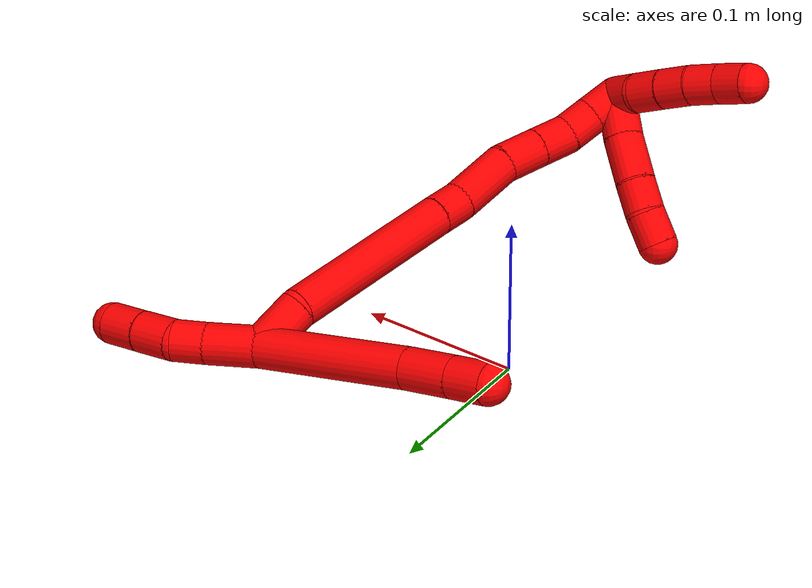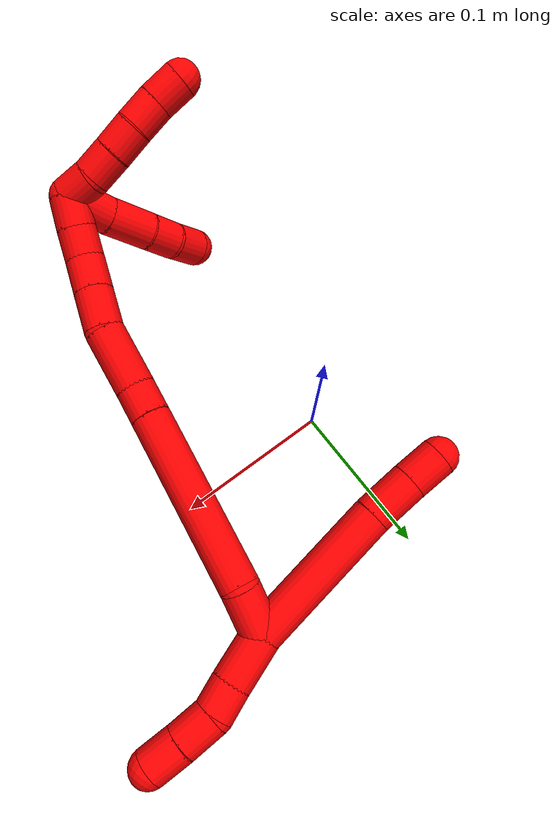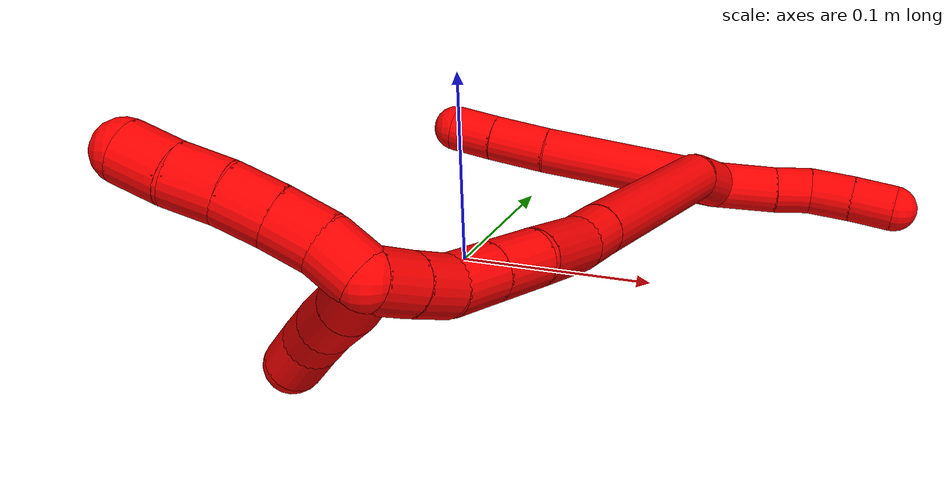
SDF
<sdf version="1.7">
 <world name="default">
  <model name="2">
   <static>0</static>
   <link name="2">
    <collision name="collision-cylinder-e_1_2_8">
     <pose>0.001353 -0.008454 0.04741 0.176458 0.028086 0.002485</pose>
     <geometry><cylinder><radius>0.0125</radius><length>0.096354</length></cylinder></geometry>
     <surface>
      <friction><ode><mu>1.16</mu><mu2>1.16</mu2><slip1>0</slip1><slip2>0</slip2></ode></friction>
      <contact><ode><kp>1e+06</kp><kd>1</kd><max_vel>0</max_vel><min_depth>0.001</min_depth></ode></contact>
     </surface>
    </collision>
    <visual name="visual-cylinder-e_1_2_8">
     <pose>0.001353 -0.008454 0.04741 0.176458 0.028086 0.002485</pose>
     <geometry><cylinder><radius>0.0125</radius><length>0.096354</length></cylinder></geometry>
     <material><ambient>1 0 0 1</ambient></material>
    </visual>
    <collision name="collision-cylinder-e_2_8_9">
     <pose>0.003751 -0.020593 0.109597 0.244407 0.068503 0.008417</pose>
     <geometry><cylinder><radius>0.0125</radius><length>0.03053</length></cylinder></geometry>
     <surface>
      <friction><ode><mu>1.16</mu><mu2>1.16</mu2><slip1>0</slip1><slip2>0</slip2></ode></friction>
      <contact><ode><kp>1e+06</kp><kd>1</kd><max_vel>0</max_vel><min_depth>0.001</min_depth></ode></contact>
     </surface>
    </collision>
    <visual name="visual-cylinder-e_2_8_9">
     <pose>0.003751 -0.020593 0.109597 0.244407 0.068503 0.008417</pose>
     <geometry><cylinder><radius>0.0125</radius><length>0.03053</length></cylinder></geometry>
     <material><ambient>1 0 0 1</ambient></material>
    </visual>
    <collision name="collision-cylinder-e_3_9_6">
     <pose>0.005691 -0.027453 0.13545 0.279168 0.077561 0.010903</pose>
     <geometry><cylinder><radius>0.0125</radius><length>0.023117</length></cylinder></geometry>
     <surface>
      <friction><ode><mu>1.16</mu><mu2>1.16</mu2><slip1>0</slip1><slip2>0</slip2></ode></friction>
      <contact><ode><kp>1e+06</kp><kd>1</kd><max_vel>0</max_vel><min_depth>0.001</min_depth></ode></contact>
     </surface>
    </collision>
    <visual name="visual-cylinder-e_3_9_6">
     <pose>0.005691 -0.027453 0.13545 0.279168 0.077561 0.010903</pose>
     <geometry><cylinder><radius>0.0125</radius><length>0.023117</length></cylinder></geometry>
     <material><ambient>1 0 0 1</ambient></material>
    </visual>
    <collision name="collision-cylinder-e_1_2_10">
     <pose>0.000848 -6e-05 -0.016372 3.13793 0.051778 3.00034</pose>
     <geometry><cylinder><radius>0.0125</radius><length>0.032788</length></cylinder></geometry>
     <surface>
      <friction><ode><mu>1.16</mu><mu2>1.16</mu2><slip1>0</slip1><slip2>0</slip2></ode></friction>
      <contact><ode><kp>1e+06</kp><kd>1</kd><max_vel>0</max_vel><min_depth>0.001</min_depth></ode></contact>
     </surface>
    </collision>
    <visual name="visual-cylinder-e_1_2_10">
     <pose>0.000848 -6e-05 -0.016372 3.13793 0.051778 3.00034</pose>
     <geometry><cylinder><radius>0.0125</radius><length>0.032788</length></cylinder></geometry>
     <material><ambient>1 0 0 1</ambient></material>
    </visual>
    <collision name="collision-cylinder-e_2_10_11">
     <pose>0.001972 -0.000819 -0.04287 3.07269 0.027089 0.748926</pose>
     <geometry><cylinder><radius>0.0125</radius><length>0.020308</length></cylinder></geometry>
     <surface>
      <friction><ode><mu>1.16</mu><mu2>1.16</mu2><slip1>0</slip1><slip2>0</slip2></ode></friction>
      <contact><ode><kp>1e+06</kp><kd>1</kd><max_vel>0</max_vel><min_depth>0.001</min_depth></ode></contact>
     </surface>
    </collision>
    <visual name="visual-cylinder-e_2_10_11">
     <pose>0.001972 -0.000819 -0.04287 3.07269 0.027089 0.748926</pose>
     <geometry><cylinder><radius>0.0125</radius><length>0.020308</length></cylinder></geometry>
     <material><ambient>1 0 0 1</ambient></material>
    </visual>
    <collision name="collision-cylinder-e_3_11_12">
     <pose>0.000696 0.001258 -0.064452 -2.90389 -0.130814 1.00341</pose>
     <geometry><cylinder><radius>0.0125</radius><length>0.023777</length></cylinder></geometry>
     <surface>
      <friction><ode><mu>1.16</mu><mu2>1.16</mu2><slip1>0</slip1><slip2>0</slip2></ode></friction>
      <contact><ode><kp>1e+06</kp><kd>1</kd><max_vel>0</max_vel><min_depth>0.001</min_depth></ode></contact>
     </surface>
    </collision>
    <visual name="visual-cylinder-e_3_11_12">
     <pose>0.000696 0.001258 -0.064452 -2.90389 -0.130814 1.00341</pose>
     <geometry><cylinder><radius>0.0125</radius><length>0.023777</length></cylinder></geometry>
     <material><ambient>1 0 0 1</ambient></material>
    </visual>
    <collision name="collision-cylinder-e_4_12_5">
     <pose>-0.002411 0.007277 -0.086897 -2.85456 -0.135047 0.875393</pose>
     <geometry><cylinder><radius>0.0125</radius><length>0.023127</length></cylinder></geometry>
     <surface>
      <friction><ode><mu>1.16</mu><mu2>1.16</mu2><slip1>0</slip1><slip2>0</slip2></ode></friction>
      <contact><ode><kp>1e+06</kp><kd>1</kd><max_vel>0</max_vel><min_depth>0.001</min_depth></ode></contact>
     </surface>
    </collision>
    <visual name="visual-cylinder-e_4_12_5">
     <pose>-0.002411 0.007277 -0.086897 -2.85456 -0.135047 0.875393</pose>
     <geometry><cylinder><radius>0.0125</radius><length>0.023127</length></cylinder></geometry>
     <material><ambient>1 0 0 1</ambient></material>
    </visual>
    <collision name="collision-cylinder-e_1_2_13">
     <pose>-0.01265 0.006272 0.007381 -0.704393 -0.917335 0.359048</pose>
     <geometry><cylinder><radius>0.0125</radius><length>0.031864</length></cylinder></geometry>
     <surface>
      <friction><ode><mu>1.16</mu><mu2>1.16</mu2><slip1>0</slip1><slip2>0</slip2></ode></friction>
      <contact><ode><kp>1e+06</kp><kd>1</kd><max_vel>0</max_vel><min_depth>0.001</min_depth></ode></contact>
     </surface>
    </collision>
    <visual name="visual-cylinder-e_1_2_13">
     <pose>-0.01265 0.006272 0.007381 -0.704393 -0.917335 0.359048</pose>
     <geometry><cylinder><radius>0.0125</radius><length>0.031864</length></cylinder></geometry>
     <material><ambient>1 0 0 1</ambient></material>
    </visual>
    <collision name="collision-cylinder-e_2_13_14">
     <pose>-0.060059 0.051049 0.04085 -0.975302 -0.641804 0.348997</pose>
     <geometry><cylinder><radius>0.0125</radius><length>0.116128</length></cylinder></geometry>
     <surface>
      <friction><ode><mu>1.16</mu><mu2>1.16</mu2><slip1>0</slip1><slip2>0</slip2></ode></friction>
      <contact><ode><kp>1e+06</kp><kd>1</kd><max_vel>0</max_vel><min_depth>0.001</min_depth></ode></contact>
     </surface>
    </collision>
    <visual name="visual-cylinder-e_2_13_14">
     <pose>-0.060059 0.051049 0.04085 -0.975302 -0.641804 0.348997</pose>
     <geometry><cylinder><radius>0.0125</radius><length>0.116128</length></cylinder></geometry>
     <material><ambient>1 0 0 1</ambient></material>
    </visual>
    <collision name="collision-cylinder-e_3_14_15">
     <pose>-0.100791 0.096665 0.071573 -0.993215 -0.613101 0.33975</pose>
     <geometry><cylinder><radius>0.0125</radius><length>0.020758</length></cylinder></geometry>
     <surface>
      <friction><ode><mu>1.16</mu><mu2>1.16</mu2><slip1>0</slip1><slip2>0</slip2></ode></friction>
      <contact><ode><kp>1e+06</kp><kd>1</kd><max_vel>0</max_vel><min_depth>0.001</min_depth></ode></contact>
     </surface>
    </collision>
    <visual name="visual-cylinder-e_3_14_15">
     <pose>-0.100791 0.096665 0.071573 -0.993215 -0.613101 0.33975</pose>
     <geometry><cylinder><radius>0.0125</radius><length>0.020758</length></cylinder></geometry>
     <material><ambient>1 0 0 1</ambient></material>
    </visual>
    <collision name="collision-cylinder-e_4_15_16">
     <pose>-0.120985 0.115666 0.085002 -0.933941 -0.765874 0.400724</pose>
     <geometry><cylinder><radius>0.0125</radius><length>0.041035</length></cylinder></geometry>
     <surface>
      <friction><ode><mu>1.16</mu><mu2>1.16</mu2><slip1>0</slip1><slip2>0</slip2></ode></friction>
      <contact><ode><kp>1e+06</kp><kd>1</kd><max_vel>0</max_vel><min_depth>0.001</min_depth></ode></contact>
     </surface>
    </collision>
    <visual name="visual-cylinder-e_4_15_16">
     <pose>-0.120985 0.115666 0.085002 -0.933941 -0.765874 0.400724</pose>
     <geometry><cylinder><radius>0.0125</radius><length>0.041035</length></cylinder></geometry>
     <material><ambient>1 0 0 1</ambient></material>
    </visual>
    <collision name="collision-cylinder-e_5_16_17">
     <pose>-0.142177 0.135195 0.101965 -0.751915 -0.55726 0.224891</pose>
     <geometry><cylinder><radius>0.0125</radius><length>0.026357</length></cylinder></geometry>
     <surface>
      <friction><ode><mu>1.16</mu><mu2>1.16</mu2><slip1>0</slip1><slip2>0</slip2></ode></friction>
      <contact><ode><kp>1e+06</kp><kd>1</kd><max_vel>0</max_vel><min_depth>0.001</min_depth></ode></contact>
     </surface>
    </collision>
    <visual name="visual-cylinder-e_5_16_17">
     <pose>-0.142177 0.135195 0.101965 -0.751915 -0.55726 0.224891</pose>
     <geometry><cylinder><radius>0.0125</radius><length>0.026357</length></cylinder></geometry>
     <material><ambient>1 0 0 1</ambient></material>
    </visual>
    <collision name="collision-cylinder-e_6_17_18">
     <pose>-0.155186 0.149533 0.117316 -0.750618 -0.55137 0.22199</pose>
     <geometry><cylinder><radius>0.0125</radius><length>0.023058</length></cylinder></geometry>
     <surface>
      <friction><ode><mu>1.16</mu><mu2>1.16</mu2><slip1>0</slip1><slip2>0</slip2></ode></friction>
      <contact><ode><kp>1e+06</kp><kd>1</kd><max_vel>0</max_vel><min_depth>0.001</min_depth></ode></contact>
     </surface>
    </collision>
    <visual name="visual-cylinder-e_6_17_18">
     <pose>-0.155186 0.149533 0.117316 -0.750618 -0.55137 0.22199</pose>
     <geometry><cylinder><radius>0.0125</radius><length>0.023058</length></cylinder></geometry>
     <material><ambient>1 0 0 1</ambient></material>
    </visual>
    <collision name="collision-cylinder-e_7_18_19">
     <pose>-0.168322 0.159909 0.130589 -0.54301 -0.784021 0.22916</pose>
     <geometry><cylinder><radius>0.0125</radius><length>0.020099</length></cylinder></geometry>
     <surface>
      <friction><ode><mu>1.16</mu><mu2>1.16</mu2><slip1>0</slip1><slip2>0</slip2></ode></friction>
      <contact><ode><kp>1e+06</kp><kd>1</kd><max_vel>0</max_vel><min_depth>0.001</min_depth></ode></contact>
     </surface>
    </collision>
    <visual name="visual-cylinder-e_7_18_19">
     <pose>-0.168322 0.159909 0.130589 -0.54301 -0.784021 0.22916</pose>
     <geometry><cylinder><radius>0.0125</radius><length>0.020099</length></cylinder></geometry>
     <material><ambient>1 0 0 1</ambient></material>
    </visual>
    <collision name="collision-cylinder-e_8_19_1">
     <pose>-0.182727 0.166922 0.143207 -0.472689 -0.784039 0.198485</pose>
     <geometry><cylinder><radius>0.0125</radius><length>0.020701</length></cylinder></geometry>
     <surface>
      <friction><ode><mu>1.16</mu><mu2>1.16</mu2><slip1>0</slip1><slip2>0</slip2></ode></friction>
      <contact><ode><kp>1e+06</kp><kd>1</kd><max_vel>0</max_vel><min_depth>0.001</min_depth></ode></contact>
     </surface>
    </collision>
    <visual name="visual-cylinder-e_8_19_1">
     <pose>-0.182727 0.166922 0.143207 -0.472689 -0.784039 0.198485</pose>
     <geometry><cylinder><radius>0.0125</radius><length>0.020701</length></cylinder></geometry>
     <material><ambient>1 0 0 1</ambient></material>
    </visual>
    <collision name="collision-cylinder-e_1_1_20">
     <pose>-0.190733 0.164266 0.157707 0.644403 -0.06981 -0.023313</pose>
     <geometry><cylinder><radius>0.0125</radius><length>0.02</length></cylinder></geometry>
     <surface>
      <friction><ode><mu>1.16</mu><mu2>1.16</mu2><slip1>0</slip1><slip2>0</slip2></ode></friction>
      <contact><ode><kp>1e+06</kp><kd>1</kd><max_vel>0</max_vel><min_depth>0.001</min_depth></ode></contact>
     </surface>
    </collision>
    <visual name="visual-cylinder-e_1_1_20">
     <pose>-0.190733 0.164266 0.157707 0.644403 -0.06981 -0.023313</pose>
     <geometry><cylinder><radius>0.0125</radius><length>0.02</length></cylinder></geometry>
     <material><ambient>1 0 0 1</ambient></material>
    </visual>
    <collision name="collision-cylinder-e_2_20_21">
     <pose>-0.192791 0.154259 0.17474 0.41725 -0.136424 -0.028925</pose>
     <geometry><cylinder><radius>0.0125</radius><length>0.02</length></cylinder></geometry>
     <surface>
      <friction><ode><mu>1.16</mu><mu2>1.16</mu2><slip1>0</slip1><slip2>0</slip2></ode></friction>
      <contact><ode><kp>1e+06</kp><kd>1</kd><max_vel>0</max_vel><min_depth>0.001</min_depth></ode></contact>
     </surface>
    </collision>
    <visual name="visual-cylinder-e_2_20_21">
     <pose>-0.192791 0.154259 0.17474 0.41725 -0.136424 -0.028925</pose>
     <geometry><cylinder><radius>0.0125</radius><length>0.02</length></cylinder></geometry>
     <material><ambient>1 0 0 1</ambient></material>
    </visual>
    <collision name="collision-cylinder-e_3_21_22">
     <pose>-0.195556 0.14675 0.19306 0.360674 -0.141025 -0.025753</pose>
     <geometry><cylinder><radius>0.0125</radius><length>0.02</length></cylinder></geometry>
     <surface>
      <friction><ode><mu>1.16</mu><mu2>1.16</mu2><slip1>0</slip1><slip2>0</slip2></ode></friction>
      <contact><ode><kp>1e+06</kp><kd>1</kd><max_vel>0</max_vel><min_depth>0.001</min_depth></ode></contact>
     </surface>
    </collision>
    <visual name="visual-cylinder-e_3_21_22">
     <pose>-0.195556 0.14675 0.19306 0.360674 -0.141025 -0.025753</pose>
     <geometry><cylinder><radius>0.0125</radius><length>0.02</length></cylinder></geometry>
     <material><ambient>1 0 0 1</ambient></material>
    </visual>
    <collision name="collision-cylinder-e_4_22_23">
     <pose>-0.197764 0.14053 0.211912 0.27697 -0.080235 -0.011189</pose>
     <geometry><cylinder><radius>0.0125</radius><length>0.02</length></cylinder></geometry>
     <surface>
      <friction><ode><mu>1.16</mu><mu2>1.16</mu2><slip1>0</slip1><slip2>0</slip2></ode></friction>
      <contact><ode><kp>1e+06</kp><kd>1</kd><max_vel>0</max_vel><min_depth>0.001</min_depth></ode></contact>
     </surface>
    </collision>
    <visual name="visual-cylinder-e_4_22_23">
     <pose>-0.197764 0.14053 0.211912 0.27697 -0.080235 -0.011189</pose>
     <geometry><cylinder><radius>0.0125</radius><length>0.02</length></cylinder></geometry>
     <material><ambient>1 0 0 1</ambient></material>
    </visual>
    <collision name="collision-cylinder-e_5_23_4">
     <pose>-0.19883 0.133894 0.2307 0.401966 -0.026492 -0.005398</pose>
     <geometry><cylinder><radius>0.0125</radius><length>0.02</length></cylinder></geometry>
     <surface>
      <friction><ode><mu>1.16</mu><mu2>1.16</mu2><slip1>0</slip1><slip2>0</slip2></ode></friction>
      <contact><ode><kp>1e+06</kp><kd>1</kd><max_vel>0</max_vel><min_depth>0.001</min_depth></ode></contact>
     </surface>
    </collision>
    <visual name="visual-cylinder-e_5_23_4">
     <pose>-0.19883 0.133894 0.2307 0.401966 -0.026492 -0.005398</pose>
     <geometry><cylinder><radius>0.0125</radius><length>0.02</length></cylinder></geometry>
     <material><ambient>1 0 0 1</ambient></material>
    </visual>
    <collision name="collision-cylinder-e_1_1_24">
     <pose>-0.176745 0.168603 0.154263 0.350345 1.22266 0.24684</pose>
     <geometry><cylinder><radius>0.0125</radius><length>0.028279</length></cylinder></geometry>
     <surface>
      <friction><ode><mu>1.16</mu><mu2>1.16</mu2><slip1>0</slip1><slip2>0</slip2></ode></friction>
      <contact><ode><kp>1e+06</kp><kd>1</kd><max_vel>0</max_vel><min_depth>0.001</min_depth></ode></contact>
     </surface>
    </collision>
    <visual name="visual-cylinder-e_1_1_24">
     <pose>-0.176745 0.168603 0.154263 0.350345 1.22266 0.24684</pose>
     <geometry><cylinder><radius>0.0125</radius><length>0.028279</length></cylinder></geometry>
     <material><ambient>1 0 0 1</ambient></material>
    </visual>
    <collision name="collision-cylinder-e_2_24_25">
     <pose>-0.149793 0.164743 0.164889 0.346987 1.12773 0.220744</pose>
     <geometry><cylinder><radius>0.0125</radius><length>0.030241</length></cylinder></geometry>
     <surface>
      <friction><ode><mu>1.16</mu><mu2>1.16</mu2><slip1>0</slip1><slip2>0</slip2></ode></friction>
      <contact><ode><kp>1e+06</kp><kd>1</kd><max_vel>0</max_vel><min_depth>0.001</min_depth></ode></contact>
     </surface>
    </collision>
    <visual name="visual-cylinder-e_2_24_25">
     <pose>-0.149793 0.164743 0.164889 0.346987 1.12773 0.220744</pose>
     <geometry><cylinder><radius>0.0125</radius><length>0.030241</length></cylinder></geometry>
     <material><ambient>1 0 0 1</ambient></material>
    </visual>
    <collision name="collision-cylinder-e_3_25_26">
     <pose>-0.126901 0.162111 0.175232 0.10047 1.1377 0.064268</pose>
     <geometry><cylinder><radius>0.0125</radius><length>0.020342</length></cylinder></geometry>
     <surface>
      <friction><ode><mu>1.16</mu><mu2>1.16</mu2><slip1>0</slip1><slip2>0</slip2></ode></friction>
      <contact><ode><kp>1e+06</kp><kd>1</kd><max_vel>0</max_vel><min_depth>0.001</min_depth></ode></contact>
     </surface>
    </collision>
    <visual name="visual-cylinder-e_3_25_26">
     <pose>-0.126901 0.162111 0.175232 0.10047 1.1377 0.064268</pose>
     <geometry><cylinder><radius>0.0125</radius><length>0.020342</length></cylinder></geometry>
     <material><ambient>1 0 0 1</ambient></material>
    </visual>
    <collision name="collision-cylinder-e_4_26_3">
     <pose>-0.108453 0.163156 0.184439 -0.28866 1.05923 -0.169756</pose>
     <geometry><cylinder><radius>0.0125</radius><length>0.021138</length></cylinder></geometry>
     <surface>
      <friction><ode><mu>1.16</mu><mu2>1.16</mu2><slip1>0</slip1><slip2>0</slip2></ode></friction>
      <contact><ode><kp>1e+06</kp><kd>1</kd><max_vel>0</max_vel><min_depth>0.001</min_depth></ode></contact>
     </surface>
    </collision>
    <visual name="visual-cylinder-e_4_26_3">
     <pose>-0.108453 0.163156 0.184439 -0.28866 1.05923 -0.169756</pose>
     <geometry><cylinder><radius>0.0125</radius><length>0.021138</length></cylinder></geometry>
     <material><ambient>1 0 0 1</ambient></material>
    </visual>
    <collision name="collision-sphere-3">
     <pose>-0.099236 0.164628 0.189399 0 -0 0</pose>
     <geometry><sphere><radius>0.0125</radius></sphere></geometry>
     <surface>
      <friction><ode><mu>1.16</mu><mu2>1.16</mu2><slip1>0</slip1><slip2>0</slip2></ode></friction>
      <contact><ode><kp>1e+06</kp><kd>1</kd><max_vel>0</max_vel><min_depth>0.001</min_depth></ode></contact>
     </surface>
    </collision>
    <visual name="visual-sphere-3">
     <pose>-0.099236 0.164628 0.189399 0 -0 0</pose>
     <geometry><sphere><radius>0.0125</radius></sphere></geometry>
     <material><ambient>1 0 0 1</ambient></material>
    </visual>
    <collision name="collision-sphere-26">
     <pose>-0.117669 0.161683 0.179479 0 -0 0</pose>
     <geometry><sphere><radius>0.0125</radius></sphere></geometry>
     <surface>
      <friction><ode><mu>1.16</mu><mu2>1.16</mu2><slip1>0</slip1><slip2>0</slip2></ode></friction>
      <contact><ode><kp>1e+06</kp><kd>1</kd><max_vel>0</max_vel><min_depth>0.001</min_depth></ode></contact>
     </surface>
    </collision>
    <visual name="visual-sphere-26">
     <pose>-0.117669 0.161683 0.179479 0 -0 0</pose>
     <geometry><sphere><radius>0.0125</radius></sphere></geometry>
     <material><ambient>1 0 0 1</ambient></material>
    </visual>
    <collision name="collision-sphere-25">
     <pose>-0.136132 0.162539 0.170985 0 -0 0</pose>
     <geometry><sphere><radius>0.0125</radius></sphere></geometry>
     <surface>
      <friction><ode><mu>1.16</mu><mu2>1.16</mu2><slip1>0</slip1><slip2>0</slip2></ode></friction>
      <contact><ode><kp>1e+06</kp><kd>1</kd><max_vel>0</max_vel><min_depth>0.001</min_depth></ode></contact>
     </surface>
    </collision>
    <visual name="visual-sphere-25">
     <pose>-0.136132 0.162539 0.170985 0 -0 0</pose>
     <geometry><sphere><radius>0.0125</radius></sphere></geometry>
     <material><ambient>1 0 0 1</ambient></material>
    </visual>
    <collision name="collision-sphere-24">
     <pose>-0.163453 0.166948 0.158793 0 -0 0</pose>
     <geometry><sphere><radius>0.0125</radius></sphere></geometry>
     <surface>
      <friction><ode><mu>1.16</mu><mu2>1.16</mu2><slip1>0</slip1><slip2>0</slip2></ode></friction>
      <contact><ode><kp>1e+06</kp><kd>1</kd><max_vel>0</max_vel><min_depth>0.001</min_depth></ode></contact>
     </surface>
    </collision>
    <visual name="visual-sphere-24">
     <pose>-0.163453 0.166948 0.158793 0 -0 0</pose>
     <geometry><sphere><radius>0.0125</radius></sphere></geometry>
     <material><ambient>1 0 0 1</ambient></material>
    </visual>
    <collision name="collision-sphere-4">
     <pose>-0.199095 0.129983 0.239899 0 -0 0</pose>
     <geometry><sphere><radius>0.0125</radius></sphere></geometry>
     <surface>
      <friction><ode><mu>1.16</mu><mu2>1.16</mu2><slip1>0</slip1><slip2>0</slip2></ode></friction>
      <contact><ode><kp>1e+06</kp><kd>1</kd><max_vel>0</max_vel><min_depth>0.001</min_depth></ode></contact>
     </surface>
    </collision>
    <visual name="visual-sphere-4">
     <pose>-0.199095 0.129983 0.239899 0 -0 0</pose>
     <geometry><sphere><radius>0.0125</radius></sphere></geometry>
     <material><ambient>1 0 0 1</ambient></material>
    </visual>
    <collision name="collision-sphere-23">
     <pose>-0.198565 0.137805 0.2215 0 -0 0</pose>
     <geometry><sphere><radius>0.0125</radius></sphere></geometry>
     <surface>
      <friction><ode><mu>1.16</mu><mu2>1.16</mu2><slip1>0</slip1><slip2>0</slip2></ode></friction>
      <contact><ode><kp>1e+06</kp><kd>1</kd><max_vel>0</max_vel><min_depth>0.001</min_depth></ode></contact>
     </surface>
    </collision>
    <visual name="visual-sphere-23">
     <pose>-0.198565 0.137805 0.2215 0 -0 0</pose>
     <geometry><sphere><radius>0.0125</radius></sphere></geometry>
     <material><ambient>1 0 0 1</ambient></material>
    </visual>
    <collision name="collision-sphere-22">
     <pose>-0.196962 0.143256 0.202324 0 -0 0</pose>
     <geometry><sphere><radius>0.0125</radius></sphere></geometry>
     <surface>
      <friction><ode><mu>1.16</mu><mu2>1.16</mu2><slip1>0</slip1><slip2>0</slip2></ode></friction>
      <contact><ode><kp>1e+06</kp><kd>1</kd><max_vel>0</max_vel><min_depth>0.001</min_depth></ode></contact>
     </surface>
    </collision>
    <visual name="visual-sphere-22">
     <pose>-0.196962 0.143256 0.202324 0 -0 0</pose>
     <geometry><sphere><radius>0.0125</radius></sphere></geometry>
     <material><ambient>1 0 0 1</ambient></material>
    </visual>
    <collision name="collision-sphere-21">
     <pose>-0.194151 0.150244 0.183797 0 -0 0</pose>
     <geometry><sphere><radius>0.0125</radius></sphere></geometry>
     <surface>
      <friction><ode><mu>1.16</mu><mu2>1.16</mu2><slip1>0</slip1><slip2>0</slip2></ode></friction>
      <contact><ode><kp>1e+06</kp><kd>1</kd><max_vel>0</max_vel><min_depth>0.001</min_depth></ode></contact>
     </surface>
    </collision>
    <visual name="visual-sphere-21">
     <pose>-0.194151 0.150244 0.183797 0 -0 0</pose>
     <geometry><sphere><radius>0.0125</radius></sphere></geometry>
     <material><ambient>1 0 0 1</ambient></material>
    </visual>
    <collision name="collision-sphere-20">
     <pose>-0.191431 0.158274 0.165682 0 -0 0</pose>
     <geometry><sphere><radius>0.0125</radius></sphere></geometry>
     <surface>
      <friction><ode><mu>1.16</mu><mu2>1.16</mu2><slip1>0</slip1><slip2>0</slip2></ode></friction>
      <contact><ode><kp>1e+06</kp><kd>1</kd><max_vel>0</max_vel><min_depth>0.001</min_depth></ode></contact>
     </surface>
    </collision>
    <visual name="visual-sphere-20">
     <pose>-0.191431 0.158274 0.165682 0 -0 0</pose>
     <geometry><sphere><radius>0.0125</radius></sphere></geometry>
     <material><ambient>1 0 0 1</ambient></material>
    </visual>
    <collision name="collision-sphere-11">
     <pose>0.002247 -0.001518 -0.052997 0 -0 0</pose>
     <geometry><sphere><radius>0.0125</radius></sphere></geometry>
     <surface>
      <friction><ode><mu>1.16</mu><mu2>1.16</mu2><slip1>0</slip1><slip2>0</slip2></ode></friction>
      <contact><ode><kp>1e+06</kp><kd>1</kd><max_vel>0</max_vel><min_depth>0.001</min_depth></ode></contact>
     </surface>
    </collision>
    <visual name="visual-sphere-11">
     <pose>0.002247 -0.001518 -0.052997 0 -0 0</pose>
     <geometry><sphere><radius>0.0125</radius></sphere></geometry>
     <material><ambient>1 0 0 1</ambient></material>
    </visual>
    <collision name="collision-sphere-10">
     <pose>0.001697 -0.00012 -0.032744 0 -0 0</pose>
     <geometry><sphere><radius>0.0125</radius></sphere></geometry>
     <surface>
      <friction><ode><mu>1.16</mu><mu2>1.16</mu2><slip1>0</slip1><slip2>0</slip2></ode></friction>
      <contact><ode><kp>1e+06</kp><kd>1</kd><max_vel>0</max_vel><min_depth>0.001</min_depth></ode></contact>
     </surface>
    </collision>
    <visual name="visual-sphere-10">
     <pose>0.001697 -0.00012 -0.032744 0 -0 0</pose>
     <geometry><sphere><radius>0.0125</radius></sphere></geometry>
     <material><ambient>1 0 0 1</ambient></material>
    </visual>
    <collision name="collision-sphere-6">
     <pose>0.006587 -0.030629 0.146528 0 -0 0</pose>
     <geometry><sphere><radius>0.0125</radius></sphere></geometry>
     <surface>
      <friction><ode><mu>1.16</mu><mu2>1.16</mu2><slip1>0</slip1><slip2>0</slip2></ode></friction>
      <contact><ode><kp>1e+06</kp><kd>1</kd><max_vel>0</max_vel><min_depth>0.001</min_depth></ode></contact>
     </surface>
    </collision>
    <visual name="visual-sphere-6">
     <pose>0.006587 -0.030629 0.146528 0 -0 0</pose>
     <geometry><sphere><radius>0.0125</radius></sphere></geometry>
     <material><ambient>1 0 0 1</ambient></material>
    </visual>
    <collision name="collision-sphere-9">
     <pose>0.004796 -0.024278 0.124373 0 -0 0</pose>
     <geometry><sphere><radius>0.0125</radius></sphere></geometry>
     <surface>
      <friction><ode><mu>1.16</mu><mu2>1.16</mu2><slip1>0</slip1><slip2>0</slip2></ode></friction>
      <contact><ode><kp>1e+06</kp><kd>1</kd><max_vel>0</max_vel><min_depth>0.001</min_depth></ode></contact>
     </surface>
    </collision>
    <visual name="visual-sphere-9">
     <pose>0.004796 -0.024278 0.124373 0 -0 0</pose>
     <geometry><sphere><radius>0.0125</radius></sphere></geometry>
     <material><ambient>1 0 0 1</ambient></material>
    </visual>
    <collision name="collision-sphere-2">
     <geometry><sphere><radius>0.0125</radius></sphere></geometry>
     <surface>
      <friction><ode><mu>1.16</mu><mu2>1.16</mu2><slip1>0</slip1><slip2>0</slip2></ode></friction>
      <contact><ode><kp>1e+06</kp><kd>1</kd><max_vel>0</max_vel><min_depth>0.001</min_depth></ode></contact>
     </surface>
    </collision>
    <visual name="visual-sphere-2">
     <geometry><sphere><radius>0.0125</radius></sphere></geometry>
     <material><ambient>1 0 0 1</ambient></material>
    </visual>
    <collision name="collision-sphere-19">
     <pose>-0.175418 0.163586 0.136682 0 -0 0</pose>
     <geometry><sphere><radius>0.0125</radius></sphere></geometry>
     <surface>
      <friction><ode><mu>1.16</mu><mu2>1.16</mu2><slip1>0</slip1><slip2>0</slip2></ode></friction>
      <contact><ode><kp>1e+06</kp><kd>1</kd><max_vel>0</max_vel><min_depth>0.001</min_depth></ode></contact>
     </surface>
    </collision>
    <visual name="visual-sphere-19">
     <pose>-0.175418 0.163586 0.136682 0 -0 0</pose>
     <geometry><sphere><radius>0.0125</radius></sphere></geometry>
     <material><ambient>1 0 0 1</ambient></material>
    </visual>
    <collision name="collision-sphere-8">
     <pose>0.002706 -0.016908 0.09482 0 -0 0</pose>
     <geometry><sphere><radius>0.0125</radius></sphere></geometry>
     <surface>
      <friction><ode><mu>1.16</mu><mu2>1.16</mu2><slip1>0</slip1><slip2>0</slip2></ode></friction>
      <contact><ode><kp>1e+06</kp><kd>1</kd><max_vel>0</max_vel><min_depth>0.001</min_depth></ode></contact>
     </surface>
    </collision>
    <visual name="visual-sphere-8">
     <pose>0.002706 -0.016908 0.09482 0 -0 0</pose>
     <geometry><sphere><radius>0.0125</radius></sphere></geometry>
     <material><ambient>1 0 0 1</ambient></material>
    </visual>
    <collision name="collision-sphere-12">
     <pose>-0.000854 0.004033 -0.075907 0 -0 0</pose>
     <geometry><sphere><radius>0.0125</radius></sphere></geometry>
     <surface>
      <friction><ode><mu>1.16</mu><mu2>1.16</mu2><slip1>0</slip1><slip2>0</slip2></ode></friction>
      <contact><ode><kp>1e+06</kp><kd>1</kd><max_vel>0</max_vel><min_depth>0.001</min_depth></ode></contact>
     </surface>
    </collision>
    <visual name="visual-sphere-12">
     <pose>-0.000854 0.004033 -0.075907 0 -0 0</pose>
     <geometry><sphere><radius>0.0125</radius></sphere></geometry>
     <material><ambient>1 0 0 1</ambient></material>
    </visual>
    <collision name="collision-sphere-5">
     <pose>-0.003968 0.010521 -0.097886 0 -0 0</pose>
     <geometry><sphere><radius>0.0125</radius></sphere></geometry>
     <surface>
      <friction><ode><mu>1.16</mu><mu2>1.16</mu2><slip1>0</slip1><slip2>0</slip2></ode></friction>
      <contact><ode><kp>1e+06</kp><kd>1</kd><max_vel>0</max_vel><min_depth>0.001</min_depth></ode></contact>
     </surface>
    </collision>
    <visual name="visual-sphere-5">
     <pose>-0.003968 0.010521 -0.097886 0 -0 0</pose>
     <geometry><sphere><radius>0.0125</radius></sphere></geometry>
     <material><ambient>1 0 0 1</ambient></material>
    </visual>
    <collision name="collision-sphere-13">
     <pose>-0.0253 0.012544 0.014761 0 -0 0</pose>
     <geometry><sphere><radius>0.0125</radius></sphere></geometry>
     <surface>
      <friction><ode><mu>1.16</mu><mu2>1.16</mu2><slip1>0</slip1><slip2>0</slip2></ode></friction>
      <contact><ode><kp>1e+06</kp><kd>1</kd><max_vel>0</max_vel><min_depth>0.001</min_depth></ode></contact>
     </surface>
    </collision>
    <visual name="visual-sphere-13">
     <pose>-0.0253 0.012544 0.014761 0 -0 0</pose>
     <geometry><sphere><radius>0.0125</radius></sphere></geometry>
     <material><ambient>1 0 0 1</ambient></material>
    </visual>
    <collision name="collision-sphere-14">
     <pose>-0.094819 0.089553 0.066938 0 -0 0</pose>
     <geometry><sphere><radius>0.0125</radius></sphere></geometry>
     <surface>
      <friction><ode><mu>1.16</mu><mu2>1.16</mu2><slip1>0</slip1><slip2>0</slip2></ode></friction>
      <contact><ode><kp>1e+06</kp><kd>1</kd><max_vel>0</max_vel><min_depth>0.001</min_depth></ode></contact>
     </surface>
    </collision>
    <visual name="visual-sphere-14">
     <pose>-0.094819 0.089553 0.066938 0 -0 0</pose>
     <geometry><sphere><radius>0.0125</radius></sphere></geometry>
     <material><ambient>1 0 0 1</ambient></material>
    </visual>
    <collision name="collision-sphere-15">
     <pose>-0.106763 0.103776 0.076207 0 -0 0</pose>
     <geometry><sphere><radius>0.0125</radius></sphere></geometry>
     <surface>
      <friction><ode><mu>1.16</mu><mu2>1.16</mu2><slip1>0</slip1><slip2>0</slip2></ode></friction>
      <contact><ode><kp>1e+06</kp><kd>1</kd><max_vel>0</max_vel><min_depth>0.001</min_depth></ode></contact>
     </surface>
    </collision>
    <visual name="visual-sphere-15">
     <pose>-0.106763 0.103776 0.076207 0 -0 0</pose>
     <geometry><sphere><radius>0.0125</radius></sphere></geometry>
     <material><ambient>1 0 0 1</ambient></material>
    </visual>
    <collision name="collision-sphere-16">
     <pose>-0.135207 0.127556 0.093796 0 -0 0</pose>
     <geometry><sphere><radius>0.0125</radius></sphere></geometry>
     <surface>
      <friction><ode><mu>1.16</mu><mu2>1.16</mu2><slip1>0</slip1><slip2>0</slip2></ode></friction>
      <contact><ode><kp>1e+06</kp><kd>1</kd><max_vel>0</max_vel><min_depth>0.001</min_depth></ode></contact>
     </surface>
    </collision>
    <visual name="visual-sphere-16">
     <pose>-0.135207 0.127556 0.093796 0 -0 0</pose>
     <geometry><sphere><radius>0.0125</radius></sphere></geometry>
     <material><ambient>1 0 0 1</ambient></material>
    </visual>
    <collision name="collision-sphere-17">
     <pose>-0.149146 0.142835 0.110134 0 -0 0</pose>
     <geometry><sphere><radius>0.0125</radius></sphere></geometry>
     <surface>
      <friction><ode><mu>1.16</mu><mu2>1.16</mu2><slip1>0</slip1><slip2>0</slip2></ode></friction>
      <contact><ode><kp>1e+06</kp><kd>1</kd><max_vel>0</max_vel><min_depth>0.001</min_depth></ode></contact>
     </surface>
    </collision>
    <visual name="visual-sphere-17">
     <pose>-0.149146 0.142835 0.110134 0 -0 0</pose>
     <geometry><sphere><radius>0.0125</radius></sphere></geometry>
     <material><ambient>1 0 0 1</ambient></material>
    </visual>
    <collision name="collision-sphere-18">
     <pose>-0.161225 0.156232 0.124497 0 -0 0</pose>
     <geometry><sphere><radius>0.0125</radius></sphere></geometry>
     <surface>
      <friction><ode><mu>1.16</mu><mu2>1.16</mu2><slip1>0</slip1><slip2>0</slip2></ode></friction>
      <contact><ode><kp>1e+06</kp><kd>1</kd><max_vel>0</max_vel><min_depth>0.001</min_depth></ode></contact>
     </surface>
    </collision>
    <visual name="visual-sphere-18">
     <pose>-0.161225 0.156232 0.124497 0 -0 0</pose>
     <geometry><sphere><radius>0.0125</radius></sphere></geometry>
     <material><ambient>1 0 0 1</ambient></material>
    </visual>
    <collision name="collision-sphere-1">
     <pose>-0.190036 0.170259 0.149732 0 -0 0</pose>
     <geometry><sphere><radius>0.0125</radius></sphere></geometry>
     <surface>
      <friction><ode><mu>1.16</mu><mu2>1.16</mu2><slip1>0</slip1><slip2>0</slip2></ode></friction>
      <contact><ode><kp>1e+06</kp><kd>1</kd><max_vel>0</max_vel><min_depth>0.001</min_depth></ode></contact>
     </surface>
    </collision>
    <visual name="visual-sphere-1">
     <pose>-0.190036 0.170259 0.149732 0 -0 0</pose>
     <geometry><sphere><radius>0.0125</radius></sphere></geometry>
     <material><ambient>1 0 0 1</ambient></material>
    </visual>
    <inertial>
     <pose>-0.083248 0.074605 0.084273 0 -0 0</pose>
     <mass>0.75</mass>
     <inertia>
      <ixx>0.000249</ixx>
      <ixy>0</ixy>
      <ixz>0</ixz>
      <iyy>0.000265</iyy>
      <iyz>0</iyz>
      <izz>2.7e-05</izz>
     </inertia>
    </inertial>
   </link>
   <pose>0.112161 0.090947 0.022633 -1.45857 0.90211 1.96915</pose>
  </model>
 </world>
</sdf>
